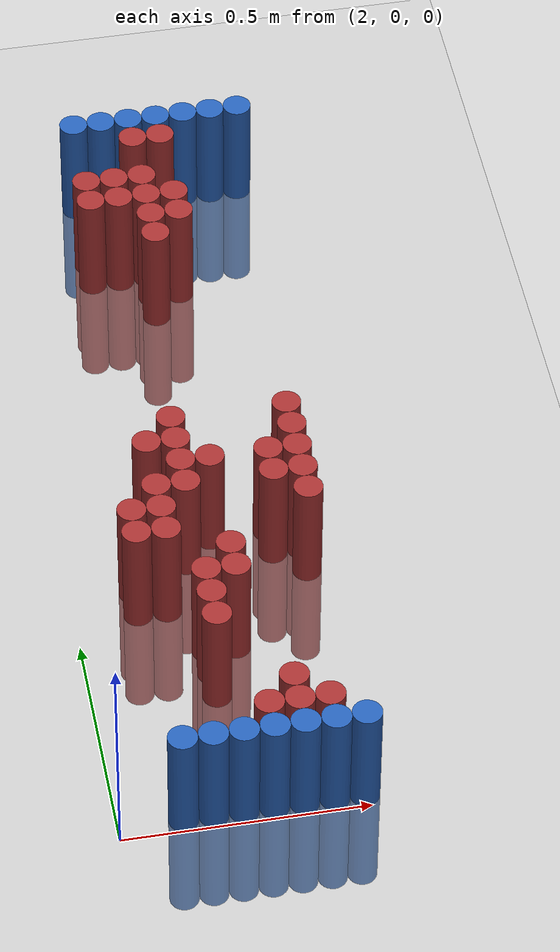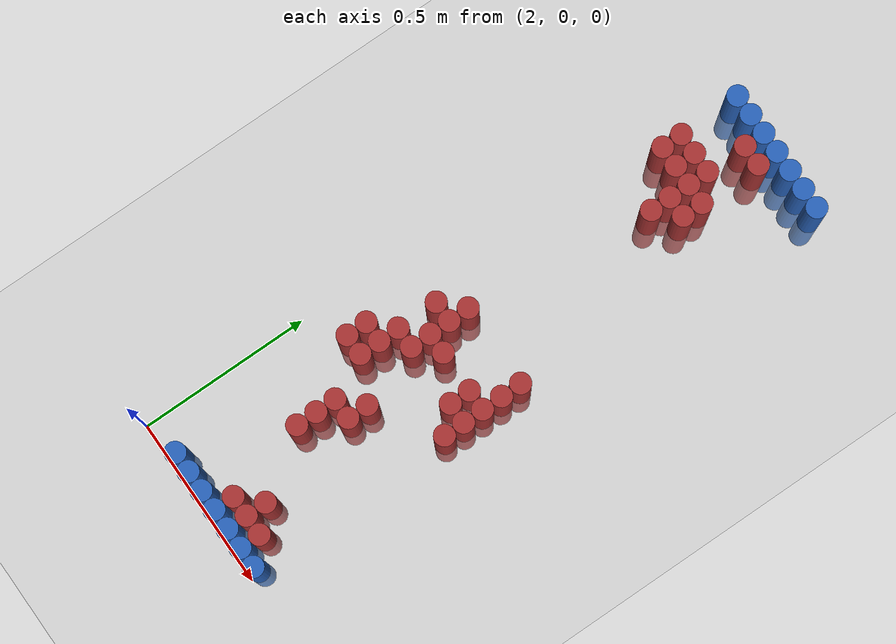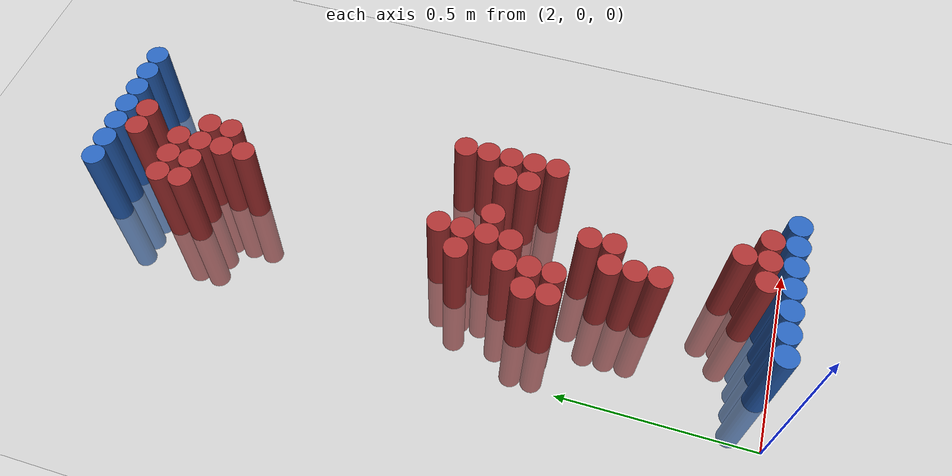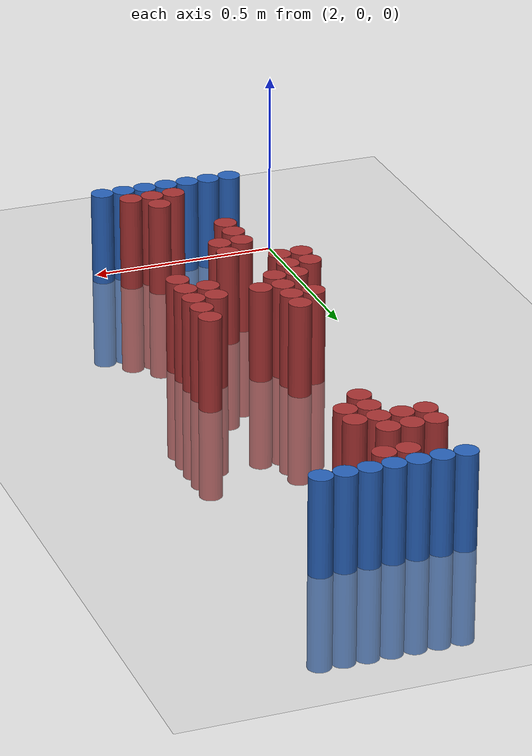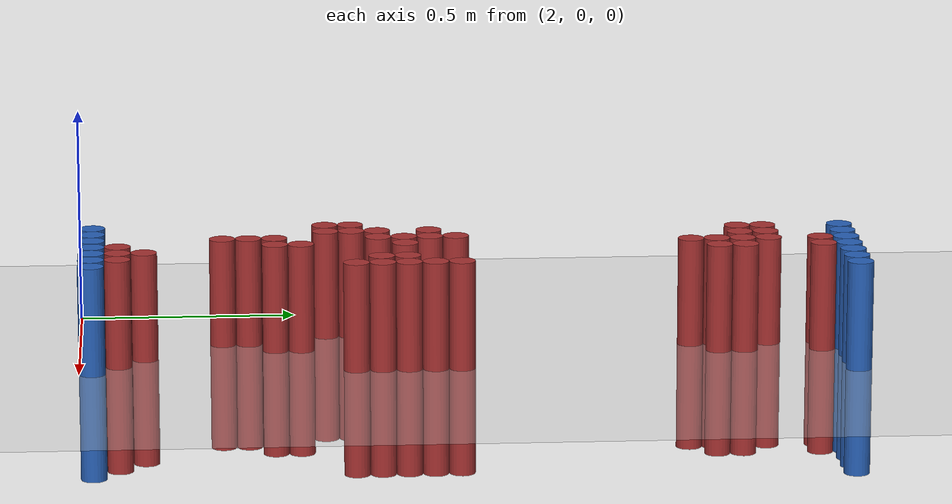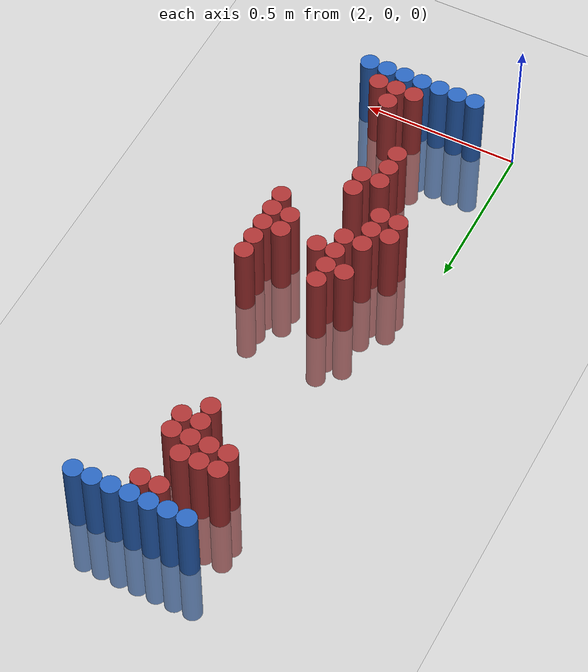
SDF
<sdf version="1.6">
 <world name="default">
  <model name="ground_plane">
   <static>1</static>
   <link name="link">
    <collision name="collision">
     <geometry><plane><normal>0 0 1</normal><size>100 100</size></plane></geometry>
     <surface><friction><ode><mu>100</mu><mu2>50</mu2></ode></friction></surface>
    </collision>
    <visual name="visual">
     <cast_shadows>0</cast_shadows>
     <geometry><plane><normal>0 0 1</normal><size>100 100</size></plane></geometry>
     <material>
      <script><uri>file://media/materials/scripts/gazebo.material</uri><name>Gazebo/Grey</name></script>
     </material>
    </visual>
   </link>
  </model>
  <model name="unit_cylinder_97">
   <static>1</static>
   <pose>2.190000 1.770000 0.000000 0.000000 0.000000 0.000000</pose>
   <link name="link">
    <inertial>
     <mass>1</mass>
     <inertia><ixx>0.145833</ixx><ixy>0</ixy><ixz>0</ixz><iyy>0.145833</iyy><iyz>0</iyz><izz>0.125</izz></inertia>
    </inertial>
    <collision name="collision">
     <geometry><cylinder><radius>0.030000</radius><length>0.5</length></cylinder></geometry>
    </collision>
    <visual name="visual">
     <geometry><cylinder><radius>0.030000</radius><length>0.5</length></cylinder></geometry>
     <material>
      <ambient>0.152000 0.379000 0.720000 1</ambient>
      <diffuse>0.152000 0.379000 0.720000 1</diffuse>
     </material>
     <material>
      <script><name>Gazebo/Grey</name><uri>file://media/materials/scripts/gazebo.material</uri></script>
     </material>
    </visual>
   </link>
  </model>
  <model name="unit_cylinder_98">
   <static>1</static>
   <pose>2.250000 1.770000 0.000000 0.000000 0.000000 0.000000</pose>
   <link name="link">
    <inertial>
     <mass>1</mass>
     <inertia><ixx>0.145833</ixx><ixy>0</ixy><ixz>0</ixz><iyy>0.145833</iyy><iyz>0</iyz><izz>0.125</izz></inertia>
    </inertial>
    <collision name="collision">
     <geometry><cylinder><radius>0.030000</radius><length>0.5</length></cylinder></geometry>
    </collision>
    <visual name="visual">
     <geometry><cylinder><radius>0.030000</radius><length>0.5</length></cylinder></geometry>
     <material>
      <ambient>0.152000 0.379000 0.720000 1</ambient>
      <diffuse>0.152000 0.379000 0.720000 1</diffuse>
     </material>
     <material>
      <script><name>Gazebo/Grey</name><uri>file://media/materials/scripts/gazebo.material</uri></script>
     </material>
    </visual>
   </link>
  </model>
  <model name="unit_cylinder_99">
   <static>1</static>
   <pose>2.310000 1.770000 0.000000 0.000000 0.000000 0.000000</pose>
   <link name="link">
    <inertial>
     <mass>1</mass>
     <inertia><ixx>0.145833</ixx><ixy>0</ixy><ixz>0</ixz><iyy>0.145833</iyy><iyz>0</iyz><izz>0.125</izz></inertia>
    </inertial>
    <collision name="collision">
     <geometry><cylinder><radius>0.030000</radius><length>0.5</length></cylinder></geometry>
    </collision>
    <visual name="visual">
     <geometry><cylinder><radius>0.030000</radius><length>0.5</length></cylinder></geometry>
     <material>
      <ambient>0.152000 0.379000 0.720000 1</ambient>
      <diffuse>0.152000 0.379000 0.720000 1</diffuse>
     </material>
     <material>
      <script><name>Gazebo/Grey</name><uri>file://media/materials/scripts/gazebo.material</uri></script>
     </material>
    </visual>
   </link>
  </model>
  <model name="unit_cylinder_100">
   <static>1</static>
   <pose>2.370000 1.770000 0.000000 0.000000 0.000000 0.000000</pose>
   <link name="link">
    <inertial>
     <mass>1</mass>
     <inertia><ixx>0.145833</ixx><ixy>0</ixy><ixz>0</ixz><iyy>0.145833</iyy><iyz>0</iyz><izz>0.125</izz></inertia>
    </inertial>
    <collision name="collision">
     <geometry><cylinder><radius>0.030000</radius><length>0.5</length></cylinder></geometry>
    </collision>
    <visual name="visual">
     <geometry><cylinder><radius>0.030000</radius><length>0.5</length></cylinder></geometry>
     <material>
      <ambient>0.152000 0.379000 0.720000 1</ambient>
      <diffuse>0.152000 0.379000 0.720000 1</diffuse>
     </material>
     <material>
      <script><name>Gazebo/Grey</name><uri>file://media/materials/scripts/gazebo.material</uri></script>
     </material>
    </visual>
   </link>
  </model>
  <model name="unit_cylinder_101">
   <static>1</static>
   <pose>2.430000 1.770000 0.000000 0.000000 0.000000 0.000000</pose>
   <link name="link">
    <inertial>
     <mass>1</mass>
     <inertia><ixx>0.145833</ixx><ixy>0</ixy><ixz>0</ixz><iyy>0.145833</iyy><iyz>0</iyz><izz>0.125</izz></inertia>
    </inertial>
    <collision name="collision">
     <geometry><cylinder><radius>0.030000</radius><length>0.5</length></cylinder></geometry>
    </collision>
    <visual name="visual">
     <geometry><cylinder><radius>0.030000</radius><length>0.5</length></cylinder></geometry>
     <material>
      <ambient>0.152000 0.379000 0.720000 1</ambient>
      <diffuse>0.152000 0.379000 0.720000 1</diffuse>
     </material>
     <material>
      <script><name>Gazebo/Grey</name><uri>file://media/materials/scripts/gazebo.material</uri></script>
     </material>
    </visual>
   </link>
  </model>
  <model name="unit_cylinder_102">
   <static>1</static>
   <pose>2.490000 1.770000 0.000000 0.000000 0.000000 0.000000</pose>
   <link name="link">
    <inertial>
     <mass>1</mass>
     <inertia><ixx>0.145833</ixx><ixy>0</ixy><ixz>0</ixz><iyy>0.145833</iyy><iyz>0</iyz><izz>0.125</izz></inertia>
    </inertial>
    <collision name="collision">
     <geometry><cylinder><radius>0.030000</radius><length>0.5</length></cylinder></geometry>
    </collision>
    <visual name="visual">
     <geometry><cylinder><radius>0.030000</radius><length>0.5</length></cylinder></geometry>
     <material>
      <ambient>0.152000 0.379000 0.720000 1</ambient>
      <diffuse>0.152000 0.379000 0.720000 1</diffuse>
     </material>
     <material>
      <script><name>Gazebo/Grey</name><uri>file://media/materials/scripts/gazebo.material</uri></script>
     </material>
    </visual>
   </link>
  </model>
  <model name="unit_cylinder_103">
   <static>1</static>
   <pose>2.550000 1.770000 0.000000 0.000000 0.000000 0.000000</pose>
   <link name="link">
    <inertial>
     <mass>1</mass>
     <inertia><ixx>0.145833</ixx><ixy>0</ixy><ixz>0</ixz><iyy>0.145833</iyy><iyz>0</iyz><izz>0.125</izz></inertia>
    </inertial>
    <collision name="collision">
     <geometry><cylinder><radius>0.030000</radius><length>0.5</length></cylinder></geometry>
    </collision>
    <visual name="visual">
     <geometry><cylinder><radius>0.030000</radius><length>0.5</length></cylinder></geometry>
     <material>
      <ambient>0.152000 0.379000 0.720000 1</ambient>
      <diffuse>0.152000 0.379000 0.720000 1</diffuse>
     </material>
     <material>
      <script><name>Gazebo/Grey</name><uri>file://media/materials/scripts/gazebo.material</uri></script>
     </material>
    </visual>
   </link>
  </model>
  <model name="unit_cylinder_125">
   <static>1</static>
   <pose>2.310000 1.710000 0.000000 0.000000 0.000000 0.000000</pose>
   <link name="link">
    <inertial>
     <mass>1</mass>
     <inertia><ixx>0.145833</ixx><ixy>0</ixy><ixz>0</ixz><iyy>0.145833</iyy><iyz>0</iyz><izz>0.125</izz></inertia>
    </inertial>
    <collision name="collision">
     <geometry><cylinder><radius>0.030000</radius><length>0.5</length></cylinder></geometry>
    </collision>
    <visual name="visual">
     <geometry><cylinder><radius>0.030000</radius><length>0.5</length></cylinder></geometry>
     <material>
      <ambient>0.648000 0.192000 0.192000 1</ambient>
      <diffuse>0.648000 0.192000 0.192000 1</diffuse>
     </material>
     <material>
      <script><name>Gazebo/Grey</name><uri>file://media/materials/scripts/gazebo.material</uri></script>
     </material>
    </visual>
   </link>
  </model>
  <model name="unit_cylinder_126">
   <static>1</static>
   <pose>2.370000 1.710000 0.000000 0.000000 0.000000 0.000000</pose>
   <link name="link">
    <inertial>
     <mass>1</mass>
     <inertia><ixx>0.145833</ixx><ixy>0</ixy><ixz>0</ixz><iyy>0.145833</iyy><iyz>0</iyz><izz>0.125</izz></inertia>
    </inertial>
    <collision name="collision">
     <geometry><cylinder><radius>0.030000</radius><length>0.5</length></cylinder></geometry>
    </collision>
    <visual name="visual">
     <geometry><cylinder><radius>0.030000</radius><length>0.5</length></cylinder></geometry>
     <material>
      <ambient>0.648000 0.192000 0.192000 1</ambient>
      <diffuse>0.648000 0.192000 0.192000 1</diffuse>
     </material>
     <material>
      <script><name>Gazebo/Grey</name><uri>file://media/materials/scripts/gazebo.material</uri></script>
     </material>
    </visual>
   </link>
  </model>
  <model name="unit_cylinder_146">
   <static>1</static>
   <pose>2.190000 1.590000 0.000000 0.000000 0.000000 0.000000</pose>
   <link name="link">
    <inertial>
     <mass>1</mass>
     <inertia><ixx>0.145833</ixx><ixy>0</ixy><ixz>0</ixz><iyy>0.145833</iyy><iyz>0</iyz><izz>0.125</izz></inertia>
    </inertial>
    <collision name="collision">
     <geometry><cylinder><radius>0.030000</radius><length>0.5</length></cylinder></geometry>
    </collision>
    <visual name="visual">
     <geometry><cylinder><radius>0.030000</radius><length>0.5</length></cylinder></geometry>
     <material>
      <ambient>0.648000 0.192000 0.192000 1</ambient>
      <diffuse>0.648000 0.192000 0.192000 1</diffuse>
     </material>
     <material>
      <script><name>Gazebo/Grey</name><uri>file://media/materials/scripts/gazebo.material</uri></script>
     </material>
    </visual>
   </link>
  </model>
  <model name="unit_cylinder_147">
   <static>1</static>
   <pose>2.250000 1.590000 0.000000 0.000000 0.000000 0.000000</pose>
   <link name="link">
    <inertial>
     <mass>1</mass>
     <inertia><ixx>0.145833</ixx><ixy>0</ixy><ixz>0</ixz><iyy>0.145833</iyy><iyz>0</iyz><izz>0.125</izz></inertia>
    </inertial>
    <collision name="collision">
     <geometry><cylinder><radius>0.030000</radius><length>0.5</length></cylinder></geometry>
    </collision>
    <visual name="visual">
     <geometry><cylinder><radius>0.030000</radius><length>0.5</length></cylinder></geometry>
     <material>
      <ambient>0.648000 0.192000 0.192000 1</ambient>
      <diffuse>0.648000 0.192000 0.192000 1</diffuse>
     </material>
     <material>
      <script><name>Gazebo/Grey</name><uri>file://media/materials/scripts/gazebo.material</uri></script>
     </material>
    </visual>
   </link>
  </model>
  <model name="unit_cylinder_148">
   <static>1</static>
   <pose>2.310000 1.590000 0.000000 0.000000 0.000000 0.000000</pose>
   <link name="link">
    <inertial>
     <mass>1</mass>
     <inertia><ixx>0.145833</ixx><ixy>0</ixy><ixz>0</ixz><iyy>0.145833</iyy><iyz>0</iyz><izz>0.125</izz></inertia>
    </inertial>
    <collision name="collision">
     <geometry><cylinder><radius>0.030000</radius><length>0.5</length></cylinder></geometry>
    </collision>
    <visual name="visual">
     <geometry><cylinder><radius>0.030000</radius><length>0.5</length></cylinder></geometry>
     <material>
      <ambient>0.648000 0.192000 0.192000 1</ambient>
      <diffuse>0.648000 0.192000 0.192000 1</diffuse>
     </material>
     <material>
      <script><name>Gazebo/Grey</name><uri>file://media/materials/scripts/gazebo.material</uri></script>
     </material>
    </visual>
   </link>
  </model>
  <model name="unit_cylinder_155">
   <static>1</static>
   <pose>2.190000 1.530000 0.000000 0.000000 0.000000 0.000000</pose>
   <link name="link">
    <inertial>
     <mass>1</mass>
     <inertia><ixx>0.145833</ixx><ixy>0</ixy><ixz>0</ixz><iyy>0.145833</iyy><iyz>0</iyz><izz>0.125</izz></inertia>
    </inertial>
    <collision name="collision">
     <geometry><cylinder><radius>0.030000</radius><length>0.5</length></cylinder></geometry>
    </collision>
    <visual name="visual">
     <geometry><cylinder><radius>0.030000</radius><length>0.5</length></cylinder></geometry>
     <material>
      <ambient>0.648000 0.192000 0.192000 1</ambient>
      <diffuse>0.648000 0.192000 0.192000 1</diffuse>
     </material>
     <material>
      <script><name>Gazebo/Grey</name><uri>file://media/materials/scripts/gazebo.material</uri></script>
     </material>
    </visual>
   </link>
  </model>
  <model name="unit_cylinder_156">
   <static>1</static>
   <pose>2.250000 1.530000 0.000000 0.000000 0.000000 0.000000</pose>
   <link name="link">
    <inertial>
     <mass>1</mass>
     <inertia><ixx>0.145833</ixx><ixy>0</ixy><ixz>0</ixz><iyy>0.145833</iyy><iyz>0</iyz><izz>0.125</izz></inertia>
    </inertial>
    <collision name="collision">
     <geometry><cylinder><radius>0.030000</radius><length>0.5</length></cylinder></geometry>
    </collision>
    <visual name="visual">
     <geometry><cylinder><radius>0.030000</radius><length>0.5</length></cylinder></geometry>
     <material>
      <ambient>0.648000 0.192000 0.192000 1</ambient>
      <diffuse>0.648000 0.192000 0.192000 1</diffuse>
     </material>
     <material>
      <script><name>Gazebo/Grey</name><uri>file://media/materials/scripts/gazebo.material</uri></script>
     </material>
    </visual>
   </link>
  </model>
  <model name="unit_cylinder_157">
   <static>1</static>
   <pose>2.310000 1.530000 0.000000 0.000000 0.000000 0.000000</pose>
   <link name="link">
    <inertial>
     <mass>1</mass>
     <inertia><ixx>0.145833</ixx><ixy>0</ixy><ixz>0</ixz><iyy>0.145833</iyy><iyz>0</iyz><izz>0.125</izz></inertia>
    </inertial>
    <collision name="collision">
     <geometry><cylinder><radius>0.030000</radius><length>0.5</length></cylinder></geometry>
    </collision>
    <visual name="visual">
     <geometry><cylinder><radius>0.030000</radius><length>0.5</length></cylinder></geometry>
     <material>
      <ambient>0.648000 0.192000 0.192000 1</ambient>
      <diffuse>0.648000 0.192000 0.192000 1</diffuse>
     </material>
     <material>
      <script><name>Gazebo/Grey</name><uri>file://media/materials/scripts/gazebo.material</uri></script>
     </material>
    </visual>
   </link>
  </model>
  <model name="unit_cylinder_158">
   <static>1</static>
   <pose>2.370000 1.530000 0.000000 0.000000 0.000000 0.000000</pose>
   <link name="link">
    <inertial>
     <mass>1</mass>
     <inertia><ixx>0.145833</ixx><ixy>0</ixy><ixz>0</ixz><iyy>0.145833</iyy><iyz>0</iyz><izz>0.125</izz></inertia>
    </inertial>
    <collision name="collision">
     <geometry><cylinder><radius>0.030000</radius><length>0.5</length></cylinder></geometry>
    </collision>
    <visual name="visual">
     <geometry><cylinder><radius>0.030000</radius><length>0.5</length></cylinder></geometry>
     <material>
      <ambient>0.648000 0.192000 0.192000 1</ambient>
      <diffuse>0.648000 0.192000 0.192000 1</diffuse>
     </material>
     <material>
      <script><name>Gazebo/Grey</name><uri>file://media/materials/scripts/gazebo.material</uri></script>
     </material>
    </visual>
   </link>
  </model>
  <model name="unit_cylinder_163">
   <static>1</static>
   <pose>2.310000 1.470000 0.000000 0.000000 0.000000 0.000000</pose>
   <link name="link">
    <inertial>
     <mass>1</mass>
     <inertia><ixx>0.145833</ixx><ixy>0</ixy><ixz>0</ixz><iyy>0.145833</iyy><iyz>0</iyz><izz>0.125</izz></inertia>
    </inertial>
    <collision name="collision">
     <geometry><cylinder><radius>0.030000</radius><length>0.5</length></cylinder></geometry>
    </collision>
    <visual name="visual">
     <geometry><cylinder><radius>0.030000</radius><length>0.5</length></cylinder></geometry>
     <material>
      <ambient>0.648000 0.192000 0.192000 1</ambient>
      <diffuse>0.648000 0.192000 0.192000 1</diffuse>
     </material>
     <material>
      <script><name>Gazebo/Grey</name><uri>file://media/materials/scripts/gazebo.material</uri></script>
     </material>
    </visual>
   </link>
  </model>
  <model name="unit_cylinder_164">
   <static>1</static>
   <pose>2.370000 1.470000 0.000000 0.000000 0.000000 0.000000</pose>
   <link name="link">
    <inertial>
     <mass>1</mass>
     <inertia><ixx>0.145833</ixx><ixy>0</ixy><ixz>0</ixz><iyy>0.145833</iyy><iyz>0</iyz><izz>0.125</izz></inertia>
    </inertial>
    <collision name="collision">
     <geometry><cylinder><radius>0.030000</radius><length>0.5</length></cylinder></geometry>
    </collision>
    <visual name="visual">
     <geometry><cylinder><radius>0.030000</radius><length>0.5</length></cylinder></geometry>
     <material>
      <ambient>0.648000 0.192000 0.192000 1</ambient>
      <diffuse>0.648000 0.192000 0.192000 1</diffuse>
     </material>
     <material>
      <script><name>Gazebo/Grey</name><uri>file://media/materials/scripts/gazebo.material</uri></script>
     </material>
    </visual>
   </link>
  </model>
  <model name="unit_cylinder_168">
   <static>1</static>
   <pose>2.310000 1.410000 0.000000 0.000000 0.000000 0.000000</pose>
   <link name="link">
    <inertial>
     <mass>1</mass>
     <inertia><ixx>0.145833</ixx><ixy>0</ixy><ixz>0</ixz><iyy>0.145833</iyy><iyz>0</iyz><izz>0.125</izz></inertia>
    </inertial>
    <collision name="collision">
     <geometry><cylinder><radius>0.030000</radius><length>0.5</length></cylinder></geometry>
    </collision>
    <visual name="visual">
     <geometry><cylinder><radius>0.030000</radius><length>0.5</length></cylinder></geometry>
     <material>
      <ambient>0.648000 0.192000 0.192000 1</ambient>
      <diffuse>0.648000 0.192000 0.192000 1</diffuse>
     </material>
     <material>
      <script><name>Gazebo/Grey</name><uri>file://media/materials/scripts/gazebo.material</uri></script>
     </material>
    </visual>
   </link>
  </model>
  <model name="unit_cylinder_185">
   <static>1</static>
   <pose>2.250000 0.870000 0.000000 0.000000 0.000000 0.000000</pose>
   <link name="link">
    <inertial>
     <mass>1</mass>
     <inertia><ixx>0.145833</ixx><ixy>0</ixy><ixz>0</ixz><iyy>0.145833</iyy><iyz>0</iyz><izz>0.125</izz></inertia>
    </inertial>
    <collision name="collision">
     <geometry><cylinder><radius>0.030000</radius><length>0.5</length></cylinder></geometry>
    </collision>
    <visual name="visual">
     <geometry><cylinder><radius>0.030000</radius><length>0.5</length></cylinder></geometry>
     <material>
      <ambient>0.648000 0.192000 0.192000 1</ambient>
      <diffuse>0.648000 0.192000 0.192000 1</diffuse>
     </material>
     <material>
      <script><name>Gazebo/Grey</name><uri>file://media/materials/scripts/gazebo.material</uri></script>
     </material>
    </visual>
   </link>
  </model>
  <model name="unit_cylinder_186">
   <static>1</static>
   <pose>2.490000 0.870000 0.000000 0.000000 0.000000 0.000000</pose>
   <link name="link">
    <inertial>
     <mass>1</mass>
     <inertia><ixx>0.145833</ixx><ixy>0</ixy><ixz>0</ixz><iyy>0.145833</iyy><iyz>0</iyz><izz>0.125</izz></inertia>
    </inertial>
    <collision name="collision">
     <geometry><cylinder><radius>0.030000</radius><length>0.5</length></cylinder></geometry>
    </collision>
    <visual name="visual">
     <geometry><cylinder><radius>0.030000</radius><length>0.5</length></cylinder></geometry>
     <material>
      <ambient>0.648000 0.192000 0.192000 1</ambient>
      <diffuse>0.648000 0.192000 0.192000 1</diffuse>
     </material>
     <material>
      <script><name>Gazebo/Grey</name><uri>file://media/materials/scripts/gazebo.material</uri></script>
     </material>
    </visual>
   </link>
  </model>
  <model name="unit_cylinder_190">
   <static>1</static>
   <pose>2.190000 0.810000 0.000000 0.000000 0.000000 0.000000</pose>
   <link name="link">
    <inertial>
     <mass>1</mass>
     <inertia><ixx>0.145833</ixx><ixy>0</ixy><ixz>0</ixz><iyy>0.145833</iyy><iyz>0</iyz><izz>0.125</izz></inertia>
    </inertial>
    <collision name="collision">
     <geometry><cylinder><radius>0.030000</radius><length>0.5</length></cylinder></geometry>
    </collision>
    <visual name="visual">
     <geometry><cylinder><radius>0.030000</radius><length>0.5</length></cylinder></geometry>
     <material>
      <ambient>0.648000 0.192000 0.192000 1</ambient>
      <diffuse>0.648000 0.192000 0.192000 1</diffuse>
     </material>
     <material>
      <script><name>Gazebo/Grey</name><uri>file://media/materials/scripts/gazebo.material</uri></script>
     </material>
    </visual>
   </link>
  </model>
  <model name="unit_cylinder_191">
   <static>1</static>
   <pose>2.250000 0.810000 0.000000 0.000000 0.000000 0.000000</pose>
   <link name="link">
    <inertial>
     <mass>1</mass>
     <inertia><ixx>0.145833</ixx><ixy>0</ixy><ixz>0</ixz><iyy>0.145833</iyy><iyz>0</iyz><izz>0.125</izz></inertia>
    </inertial>
    <collision name="collision">
     <geometry><cylinder><radius>0.030000</radius><length>0.5</length></cylinder></geometry>
    </collision>
    <visual name="visual">
     <geometry><cylinder><radius>0.030000</radius><length>0.5</length></cylinder></geometry>
     <material>
      <ambient>0.648000 0.192000 0.192000 1</ambient>
      <diffuse>0.648000 0.192000 0.192000 1</diffuse>
     </material>
     <material>
      <script><name>Gazebo/Grey</name><uri>file://media/materials/scripts/gazebo.material</uri></script>
     </material>
    </visual>
   </link>
  </model>
  <model name="unit_cylinder_192">
   <static>1</static>
   <pose>2.490000 0.810000 0.000000 0.000000 0.000000 0.000000</pose>
   <link name="link">
    <inertial>
     <mass>1</mass>
     <inertia><ixx>0.145833</ixx><ixy>0</ixy><ixz>0</ixz><iyy>0.145833</iyy><iyz>0</iyz><izz>0.125</izz></inertia>
    </inertial>
    <collision name="collision">
     <geometry><cylinder><radius>0.030000</radius><length>0.5</length></cylinder></geometry>
    </collision>
    <visual name="visual">
     <geometry><cylinder><radius>0.030000</radius><length>0.5</length></cylinder></geometry>
     <material>
      <ambient>0.648000 0.192000 0.192000 1</ambient>
      <diffuse>0.648000 0.192000 0.192000 1</diffuse>
     </material>
     <material>
      <script><name>Gazebo/Grey</name><uri>file://media/materials/scripts/gazebo.material</uri></script>
     </material>
    </visual>
   </link>
  </model>
  <model name="unit_cylinder_198">
   <static>1</static>
   <pose>2.250000 0.750000 0.000000 0.000000 0.000000 0.000000</pose>
   <link name="link">
    <inertial>
     <mass>1</mass>
     <inertia><ixx>0.145833</ixx><ixy>0</ixy><ixz>0</ixz><iyy>0.145833</iyy><iyz>0</iyz><izz>0.125</izz></inertia>
    </inertial>
    <collision name="collision">
     <geometry><cylinder><radius>0.030000</radius><length>0.5</length></cylinder></geometry>
    </collision>
    <visual name="visual">
     <geometry><cylinder><radius>0.030000</radius><length>0.5</length></cylinder></geometry>
     <material>
      <ambient>0.648000 0.192000 0.192000 1</ambient>
      <diffuse>0.648000 0.192000 0.192000 1</diffuse>
     </material>
     <material>
      <script><name>Gazebo/Grey</name><uri>file://media/materials/scripts/gazebo.material</uri></script>
     </material>
    </visual>
   </link>
  </model>
  <model name="unit_cylinder_199">
   <static>1</static>
   <pose>2.310000 0.750000 0.000000 0.000000 0.000000 0.000000</pose>
   <link name="link">
    <inertial>
     <mass>1</mass>
     <inertia><ixx>0.145833</ixx><ixy>0</ixy><ixz>0</ixz><iyy>0.145833</iyy><iyz>0</iyz><izz>0.125</izz></inertia>
    </inertial>
    <collision name="collision">
     <geometry><cylinder><radius>0.030000</radius><length>0.5</length></cylinder></geometry>
    </collision>
    <visual name="visual">
     <geometry><cylinder><radius>0.030000</radius><length>0.5</length></cylinder></geometry>
     <material>
      <ambient>0.648000 0.192000 0.192000 1</ambient>
      <diffuse>0.648000 0.192000 0.192000 1</diffuse>
     </material>
     <material>
      <script><name>Gazebo/Grey</name><uri>file://media/materials/scripts/gazebo.material</uri></script>
     </material>
    </visual>
   </link>
  </model>
  <model name="unit_cylinder_200">
   <static>1</static>
   <pose>2.430000 0.750000 0.000000 0.000000 0.000000 0.000000</pose>
   <link name="link">
    <inertial>
     <mass>1</mass>
     <inertia><ixx>0.145833</ixx><ixy>0</ixy><ixz>0</ixz><iyy>0.145833</iyy><iyz>0</iyz><izz>0.125</izz></inertia>
    </inertial>
    <collision name="collision">
     <geometry><cylinder><radius>0.030000</radius><length>0.5</length></cylinder></geometry>
    </collision>
    <visual name="visual">
     <geometry><cylinder><radius>0.030000</radius><length>0.5</length></cylinder></geometry>
     <material>
      <ambient>0.648000 0.192000 0.192000 1</ambient>
      <diffuse>0.648000 0.192000 0.192000 1</diffuse>
     </material>
     <material>
      <script><name>Gazebo/Grey</name><uri>file://media/materials/scripts/gazebo.material</uri></script>
     </material>
    </visual>
   </link>
  </model>
  <model name="unit_cylinder_201">
   <static>1</static>
   <pose>2.490000 0.750000 0.000000 0.000000 0.000000 0.000000</pose>
   <link name="link">
    <inertial>
     <mass>1</mass>
     <inertia><ixx>0.145833</ixx><ixy>0</ixy><ixz>0</ixz><iyy>0.145833</iyy><iyz>0</iyz><izz>0.125</izz></inertia>
    </inertial>
    <collision name="collision">
     <geometry><cylinder><radius>0.030000</radius><length>0.5</length></cylinder></geometry>
    </collision>
    <visual name="visual">
     <geometry><cylinder><radius>0.030000</radius><length>0.5</length></cylinder></geometry>
     <material>
      <ambient>0.648000 0.192000 0.192000 1</ambient>
      <diffuse>0.648000 0.192000 0.192000 1</diffuse>
     </material>
     <material>
      <script><name>Gazebo/Grey</name><uri>file://media/materials/scripts/gazebo.material</uri></script>
     </material>
    </visual>
   </link>
  </model>
  <model name="unit_cylinder_209">
   <static>1</static>
   <pose>2.190000 0.690000 0.000000 0.000000 0.000000 0.000000</pose>
   <link name="link">
    <inertial>
     <mass>1</mass>
     <inertia><ixx>0.145833</ixx><ixy>0</ixy><ixz>0</ixz><iyy>0.145833</iyy><iyz>0</iyz><izz>0.125</izz></inertia>
    </inertial>
    <collision name="collision">
     <geometry><cylinder><radius>0.030000</radius><length>0.5</length></cylinder></geometry>
    </collision>
    <visual name="visual">
     <geometry><cylinder><radius>0.030000</radius><length>0.5</length></cylinder></geometry>
     <material>
      <ambient>0.648000 0.192000 0.192000 1</ambient>
      <diffuse>0.648000 0.192000 0.192000 1</diffuse>
     </material>
     <material>
      <script><name>Gazebo/Grey</name><uri>file://media/materials/scripts/gazebo.material</uri></script>
     </material>
    </visual>
   </link>
  </model>
  <model name="unit_cylinder_210">
   <static>1</static>
   <pose>2.250000 0.690000 0.000000 0.000000 0.000000 0.000000</pose>
   <link name="link">
    <inertial>
     <mass>1</mass>
     <inertia><ixx>0.145833</ixx><ixy>0</ixy><ixz>0</ixz><iyy>0.145833</iyy><iyz>0</iyz><izz>0.125</izz></inertia>
    </inertial>
    <collision name="collision">
     <geometry><cylinder><radius>0.030000</radius><length>0.5</length></cylinder></geometry>
    </collision>
    <visual name="visual">
     <geometry><cylinder><radius>0.030000</radius><length>0.5</length></cylinder></geometry>
     <material>
      <ambient>0.648000 0.192000 0.192000 1</ambient>
      <diffuse>0.648000 0.192000 0.192000 1</diffuse>
     </material>
     <material>
      <script><name>Gazebo/Grey</name><uri>file://media/materials/scripts/gazebo.material</uri></script>
     </material>
    </visual>
   </link>
  </model>
  <model name="unit_cylinder_211">
   <static>1</static>
   <pose>2.430000 0.690000 0.000000 0.000000 0.000000 0.000000</pose>
   <link name="link">
    <inertial>
     <mass>1</mass>
     <inertia><ixx>0.145833</ixx><ixy>0</ixy><ixz>0</ixz><iyy>0.145833</iyy><iyz>0</iyz><izz>0.125</izz></inertia>
    </inertial>
    <collision name="collision">
     <geometry><cylinder><radius>0.030000</radius><length>0.5</length></cylinder></geometry>
    </collision>
    <visual name="visual">
     <geometry><cylinder><radius>0.030000</radius><length>0.5</length></cylinder></geometry>
     <material>
      <ambient>0.648000 0.192000 0.192000 1</ambient>
      <diffuse>0.648000 0.192000 0.192000 1</diffuse>
     </material>
     <material>
      <script><name>Gazebo/Grey</name><uri>file://media/materials/scripts/gazebo.material</uri></script>
     </material>
    </visual>
   </link>
  </model>
  <model name="unit_cylinder_212">
   <static>1</static>
   <pose>2.490000 0.690000 0.000000 0.000000 0.000000 0.000000</pose>
   <link name="link">
    <inertial>
     <mass>1</mass>
     <inertia><ixx>0.145833</ixx><ixy>0</ixy><ixz>0</ixz><iyy>0.145833</iyy><iyz>0</iyz><izz>0.125</izz></inertia>
    </inertial>
    <collision name="collision">
     <geometry><cylinder><radius>0.030000</radius><length>0.5</length></cylinder></geometry>
    </collision>
    <visual name="visual">
     <geometry><cylinder><radius>0.030000</radius><length>0.5</length></cylinder></geometry>
     <material>
      <ambient>0.648000 0.192000 0.192000 1</ambient>
      <diffuse>0.648000 0.192000 0.192000 1</diffuse>
     </material>
     <material>
      <script><name>Gazebo/Grey</name><uri>file://media/materials/scripts/gazebo.material</uri></script>
     </material>
    </visual>
   </link>
  </model>
  <model name="unit_cylinder_218">
   <static>1</static>
   <pose>2.130000 0.630000 0.000000 0.000000 0.000000 0.000000</pose>
   <link name="link">
    <inertial>
     <mass>1</mass>
     <inertia><ixx>0.145833</ixx><ixy>0</ixy><ixz>0</ixz><iyy>0.145833</iyy><iyz>0</iyz><izz>0.125</izz></inertia>
    </inertial>
    <collision name="collision">
     <geometry><cylinder><radius>0.030000</radius><length>0.5</length></cylinder></geometry>
    </collision>
    <visual name="visual">
     <geometry><cylinder><radius>0.030000</radius><length>0.5</length></cylinder></geometry>
     <material>
      <ambient>0.648000 0.192000 0.192000 1</ambient>
      <diffuse>0.648000 0.192000 0.192000 1</diffuse>
     </material>
     <material>
      <script><name>Gazebo/Grey</name><uri>file://media/materials/scripts/gazebo.material</uri></script>
     </material>
    </visual>
   </link>
  </model>
  <model name="unit_cylinder_219">
   <static>1</static>
   <pose>2.190000 0.630000 0.000000 0.000000 0.000000 0.000000</pose>
   <link name="link">
    <inertial>
     <mass>1</mass>
     <inertia><ixx>0.145833</ixx><ixy>0</ixy><ixz>0</ixz><iyy>0.145833</iyy><iyz>0</iyz><izz>0.125</izz></inertia>
    </inertial>
    <collision name="collision">
     <geometry><cylinder><radius>0.030000</radius><length>0.5</length></cylinder></geometry>
    </collision>
    <visual name="visual">
     <geometry><cylinder><radius>0.030000</radius><length>0.5</length></cylinder></geometry>
     <material>
      <ambient>0.648000 0.192000 0.192000 1</ambient>
      <diffuse>0.648000 0.192000 0.192000 1</diffuse>
     </material>
     <material>
      <script><name>Gazebo/Grey</name><uri>file://media/materials/scripts/gazebo.material</uri></script>
     </material>
    </visual>
   </link>
  </model>
  <model name="unit_cylinder_220">
   <static>1</static>
   <pose>2.490000 0.630000 0.000000 0.000000 0.000000 0.000000</pose>
   <link name="link">
    <inertial>
     <mass>1</mass>
     <inertia><ixx>0.145833</ixx><ixy>0</ixy><ixz>0</ixz><iyy>0.145833</iyy><iyz>0</iyz><izz>0.125</izz></inertia>
    </inertial>
    <collision name="collision">
     <geometry><cylinder><radius>0.030000</radius><length>0.5</length></cylinder></geometry>
    </collision>
    <visual name="visual">
     <geometry><cylinder><radius>0.030000</radius><length>0.5</length></cylinder></geometry>
     <material>
      <ambient>0.648000 0.192000 0.192000 1</ambient>
      <diffuse>0.648000 0.192000 0.192000 1</diffuse>
     </material>
     <material>
      <script><name>Gazebo/Grey</name><uri>file://media/materials/scripts/gazebo.material</uri></script>
     </material>
    </visual>
   </link>
  </model>
  <model name="unit_cylinder_227">
   <static>1</static>
   <pose>2.130000 0.570000 0.000000 0.000000 0.000000 0.000000</pose>
   <link name="link">
    <inertial>
     <mass>1</mass>
     <inertia><ixx>0.145833</ixx><ixy>0</ixy><ixz>0</ixz><iyy>0.145833</iyy><iyz>0</iyz><izz>0.125</izz></inertia>
    </inertial>
    <collision name="collision">
     <geometry><cylinder><radius>0.030000</radius><length>0.5</length></cylinder></geometry>
    </collision>
    <visual name="visual">
     <geometry><cylinder><radius>0.030000</radius><length>0.5</length></cylinder></geometry>
     <material>
      <ambient>0.648000 0.192000 0.192000 1</ambient>
      <diffuse>0.648000 0.192000 0.192000 1</diffuse>
     </material>
     <material>
      <script><name>Gazebo/Grey</name><uri>file://media/materials/scripts/gazebo.material</uri></script>
     </material>
    </visual>
   </link>
  </model>
  <model name="unit_cylinder_228">
   <static>1</static>
   <pose>2.190000 0.570000 0.000000 0.000000 0.000000 0.000000</pose>
   <link name="link">
    <inertial>
     <mass>1</mass>
     <inertia><ixx>0.145833</ixx><ixy>0</ixy><ixz>0</ixz><iyy>0.145833</iyy><iyz>0</iyz><izz>0.125</izz></inertia>
    </inertial>
    <collision name="collision">
     <geometry><cylinder><radius>0.030000</radius><length>0.5</length></cylinder></geometry>
    </collision>
    <visual name="visual">
     <geometry><cylinder><radius>0.030000</radius><length>0.5</length></cylinder></geometry>
     <material>
      <ambient>0.648000 0.192000 0.192000 1</ambient>
      <diffuse>0.648000 0.192000 0.192000 1</diffuse>
     </material>
     <material>
      <script><name>Gazebo/Grey</name><uri>file://media/materials/scripts/gazebo.material</uri></script>
     </material>
    </visual>
   </link>
  </model>
  <model name="unit_cylinder_234">
   <static>1</static>
   <pose>2.310000 0.510000 0.000000 0.000000 0.000000 0.000000</pose>
   <link name="link">
    <inertial>
     <mass>1</mass>
     <inertia><ixx>0.145833</ixx><ixy>0</ixy><ixz>0</ixz><iyy>0.145833</iyy><iyz>0</iyz><izz>0.125</izz></inertia>
    </inertial>
    <collision name="collision">
     <geometry><cylinder><radius>0.030000</radius><length>0.5</length></cylinder></geometry>
    </collision>
    <visual name="visual">
     <geometry><cylinder><radius>0.030000</radius><length>0.5</length></cylinder></geometry>
     <material>
      <ambient>0.648000 0.192000 0.192000 1</ambient>
      <diffuse>0.648000 0.192000 0.192000 1</diffuse>
     </material>
     <material>
      <script><name>Gazebo/Grey</name><uri>file://media/materials/scripts/gazebo.material</uri></script>
     </material>
    </visual>
   </link>
  </model>
  <model name="unit_cylinder_239">
   <static>1</static>
   <pose>2.250000 0.450000 0.000000 0.000000 0.000000 0.000000</pose>
   <link name="link">
    <inertial>
     <mass>1</mass>
     <inertia><ixx>0.145833</ixx><ixy>0</ixy><ixz>0</ixz><iyy>0.145833</iyy><iyz>0</iyz><izz>0.125</izz></inertia>
    </inertial>
    <collision name="collision">
     <geometry><cylinder><radius>0.030000</radius><length>0.5</length></cylinder></geometry>
    </collision>
    <visual name="visual">
     <geometry><cylinder><radius>0.030000</radius><length>0.5</length></cylinder></geometry>
     <material>
      <ambient>0.648000 0.192000 0.192000 1</ambient>
      <diffuse>0.648000 0.192000 0.192000 1</diffuse>
     </material>
     <material>
      <script><name>Gazebo/Grey</name><uri>file://media/materials/scripts/gazebo.material</uri></script>
     </material>
    </visual>
   </link>
  </model>
  <model name="unit_cylinder_240">
   <static>1</static>
   <pose>2.310000 0.450000 0.000000 0.000000 0.000000 0.000000</pose>
   <link name="link">
    <inertial>
     <mass>1</mass>
     <inertia><ixx>0.145833</ixx><ixy>0</ixy><ixz>0</ixz><iyy>0.145833</iyy><iyz>0</iyz><izz>0.125</izz></inertia>
    </inertial>
    <collision name="collision">
     <geometry><cylinder><radius>0.030000</radius><length>0.5</length></cylinder></geometry>
    </collision>
    <visual name="visual">
     <geometry><cylinder><radius>0.030000</radius><length>0.5</length></cylinder></geometry>
     <material>
      <ambient>0.648000 0.192000 0.192000 1</ambient>
      <diffuse>0.648000 0.192000 0.192000 1</diffuse>
     </material>
     <material>
      <script><name>Gazebo/Grey</name><uri>file://media/materials/scripts/gazebo.material</uri></script>
     </material>
    </visual>
   </link>
  </model>
  <model name="unit_cylinder_243">
   <static>1</static>
   <pose>2.250000 0.390000 0.000000 0.000000 0.000000 0.000000</pose>
   <link name="link">
    <inertial>
     <mass>1</mass>
     <inertia><ixx>0.145833</ixx><ixy>0</ixy><ixz>0</ixz><iyy>0.145833</iyy><iyz>0</iyz><izz>0.125</izz></inertia>
    </inertial>
    <collision name="collision">
     <geometry><cylinder><radius>0.030000</radius><length>0.5</length></cylinder></geometry>
    </collision>
    <visual name="visual">
     <geometry><cylinder><radius>0.030000</radius><length>0.5</length></cylinder></geometry>
     <material>
      <ambient>0.648000 0.192000 0.192000 1</ambient>
      <diffuse>0.648000 0.192000 0.192000 1</diffuse>
     </material>
     <material>
      <script><name>Gazebo/Grey</name><uri>file://media/materials/scripts/gazebo.material</uri></script>
     </material>
    </visual>
   </link>
  </model>
  <model name="unit_cylinder_247">
   <static>1</static>
   <pose>2.250000 0.330000 0.000000 0.000000 0.000000 0.000000</pose>
   <link name="link">
    <inertial>
     <mass>1</mass>
     <inertia><ixx>0.145833</ixx><ixy>0</ixy><ixz>0</ixz><iyy>0.145833</iyy><iyz>0</iyz><izz>0.125</izz></inertia>
    </inertial>
    <collision name="collision">
     <geometry><cylinder><radius>0.030000</radius><length>0.5</length></cylinder></geometry>
    </collision>
    <visual name="visual">
     <geometry><cylinder><radius>0.030000</radius><length>0.5</length></cylinder></geometry>
     <material>
      <ambient>0.648000 0.192000 0.192000 1</ambient>
      <diffuse>0.648000 0.192000 0.192000 1</diffuse>
     </material>
     <material>
      <script><name>Gazebo/Grey</name><uri>file://media/materials/scripts/gazebo.material</uri></script>
     </material>
    </visual>
   </link>
  </model>
  <model name="unit_cylinder_268">
   <static>1</static>
   <pose>2.370000 0.150000 0.000000 0.000000 0.000000 0.000000</pose>
   <link name="link">
    <inertial>
     <mass>1</mass>
     <inertia><ixx>0.145833</ixx><ixy>0</ixy><ixz>0</ixz><iyy>0.145833</iyy><iyz>0</iyz><izz>0.125</izz></inertia>
    </inertial>
    <collision name="collision">
     <geometry><cylinder><radius>0.030000</radius><length>0.5</length></cylinder></geometry>
    </collision>
    <visual name="visual">
     <geometry><cylinder><radius>0.030000</radius><length>0.5</length></cylinder></geometry>
     <material>
      <ambient>0.648000 0.192000 0.192000 1</ambient>
      <diffuse>0.648000 0.192000 0.192000 1</diffuse>
     </material>
     <material>
      <script><name>Gazebo/Grey</name><uri>file://media/materials/scripts/gazebo.material</uri></script>
     </material>
    </visual>
   </link>
  </model>
  <model name="unit_cylinder_274">
   <static>1</static>
   <pose>2.310000 0.090000 0.000000 0.000000 0.000000 0.000000</pose>
   <link name="link">
    <inertial>
     <mass>1</mass>
     <inertia><ixx>0.145833</ixx><ixy>0</ixy><ixz>0</ixz><iyy>0.145833</iyy><iyz>0</iyz><izz>0.125</izz></inertia>
    </inertial>
    <collision name="collision">
     <geometry><cylinder><radius>0.030000</radius><length>0.5</length></cylinder></geometry>
    </collision>
    <visual name="visual">
     <geometry><cylinder><radius>0.030000</radius><length>0.5</length></cylinder></geometry>
     <material>
      <ambient>0.648000 0.192000 0.192000 1</ambient>
      <diffuse>0.648000 0.192000 0.192000 1</diffuse>
     </material>
     <material>
      <script><name>Gazebo/Grey</name><uri>file://media/materials/scripts/gazebo.material</uri></script>
     </material>
    </visual>
   </link>
  </model>
  <model name="unit_cylinder_275">
   <static>1</static>
   <pose>2.370000 0.090000 0.000000 0.000000 0.000000 0.000000</pose>
   <link name="link">
    <inertial>
     <mass>1</mass>
     <inertia><ixx>0.145833</ixx><ixy>0</ixy><ixz>0</ixz><iyy>0.145833</iyy><iyz>0</iyz><izz>0.125</izz></inertia>
    </inertial>
    <collision name="collision">
     <geometry><cylinder><radius>0.030000</radius><length>0.5</length></cylinder></geometry>
    </collision>
    <visual name="visual">
     <geometry><cylinder><radius>0.030000</radius><length>0.5</length></cylinder></geometry>
     <material>
      <ambient>0.648000 0.192000 0.192000 1</ambient>
      <diffuse>0.648000 0.192000 0.192000 1</diffuse>
     </material>
     <material>
      <script><name>Gazebo/Grey</name><uri>file://media/materials/scripts/gazebo.material</uri></script>
     </material>
    </visual>
   </link>
  </model>
  <model name="unit_cylinder_276">
   <static>1</static>
   <pose>2.430000 0.090000 0.000000 0.000000 0.000000 0.000000</pose>
   <link name="link">
    <inertial>
     <mass>1</mass>
     <inertia><ixx>0.145833</ixx><ixy>0</ixy><ixz>0</ixz><iyy>0.145833</iyy><iyz>0</iyz><izz>0.125</izz></inertia>
    </inertial>
    <collision name="collision">
     <geometry><cylinder><radius>0.030000</radius><length>0.5</length></cylinder></geometry>
    </collision>
    <visual name="visual">
     <geometry><cylinder><radius>0.030000</radius><length>0.5</length></cylinder></geometry>
     <material>
      <ambient>0.648000 0.192000 0.192000 1</ambient>
      <diffuse>0.648000 0.192000 0.192000 1</diffuse>
     </material>
     <material>
      <script><name>Gazebo/Grey</name><uri>file://media/materials/scripts/gazebo.material</uri></script>
     </material>
    </visual>
   </link>
  </model>
  <model name="unit_cylinder_284">
   <static>1</static>
   <pose>2.130000 0.030000 0.000000 0.000000 0.000000 0.000000</pose>
   <link name="link">
    <inertial>
     <mass>1</mass>
     <inertia><ixx>0.145833</ixx><ixy>0</ixy><ixz>0</ixz><iyy>0.145833</iyy><iyz>0</iyz><izz>0.125</izz></inertia>
    </inertial>
    <collision name="collision">
     <geometry><cylinder><radius>0.030000</radius><length>0.5</length></cylinder></geometry>
    </collision>
    <visual name="visual">
     <geometry><cylinder><radius>0.030000</radius><length>0.5</length></cylinder></geometry>
     <material>
      <ambient>0.152000 0.379000 0.720000 1</ambient>
      <diffuse>0.152000 0.379000 0.720000 1</diffuse>
     </material>
     <material>
      <script><name>Gazebo/Grey</name><uri>file://media/materials/scripts/gazebo.material</uri></script>
     </material>
    </visual>
   </link>
  </model>
  <model name="unit_cylinder_285">
   <static>1</static>
   <pose>2.190000 0.030000 0.000000 0.000000 0.000000 0.000000</pose>
   <link name="link">
    <inertial>
     <mass>1</mass>
     <inertia><ixx>0.145833</ixx><ixy>0</ixy><ixz>0</ixz><iyy>0.145833</iyy><iyz>0</iyz><izz>0.125</izz></inertia>
    </inertial>
    <collision name="collision">
     <geometry><cylinder><radius>0.030000</radius><length>0.5</length></cylinder></geometry>
    </collision>
    <visual name="visual">
     <geometry><cylinder><radius>0.030000</radius><length>0.5</length></cylinder></geometry>
     <material>
      <ambient>0.152000 0.379000 0.720000 1</ambient>
      <diffuse>0.152000 0.379000 0.720000 1</diffuse>
     </material>
     <material>
      <script><name>Gazebo/Grey</name><uri>file://media/materials/scripts/gazebo.material</uri></script>
     </material>
    </visual>
   </link>
  </model>
  <model name="unit_cylinder_286">
   <static>1</static>
   <pose>2.250000 0.030000 0.000000 0.000000 0.000000 0.000000</pose>
   <link name="link">
    <inertial>
     <mass>1</mass>
     <inertia><ixx>0.145833</ixx><ixy>0</ixy><ixz>0</ixz><iyy>0.145833</iyy><iyz>0</iyz><izz>0.125</izz></inertia>
    </inertial>
    <collision name="collision">
     <geometry><cylinder><radius>0.030000</radius><length>0.5</length></cylinder></geometry>
    </collision>
    <visual name="visual">
     <geometry><cylinder><radius>0.030000</radius><length>0.5</length></cylinder></geometry>
     <material>
      <ambient>0.152000 0.379000 0.720000 1</ambient>
      <diffuse>0.152000 0.379000 0.720000 1</diffuse>
     </material>
     <material>
      <script><name>Gazebo/Grey</name><uri>file://media/materials/scripts/gazebo.material</uri></script>
     </material>
    </visual>
   </link>
  </model>
  <model name="unit_cylinder_287">
   <static>1</static>
   <pose>2.310000 0.030000 0.000000 0.000000 0.000000 0.000000</pose>
   <link name="link">
    <inertial>
     <mass>1</mass>
     <inertia><ixx>0.145833</ixx><ixy>0</ixy><ixz>0</ixz><iyy>0.145833</iyy><iyz>0</iyz><izz>0.125</izz></inertia>
    </inertial>
    <collision name="collision">
     <geometry><cylinder><radius>0.030000</radius><length>0.5</length></cylinder></geometry>
    </collision>
    <visual name="visual">
     <geometry><cylinder><radius>0.030000</radius><length>0.5</length></cylinder></geometry>
     <material>
      <ambient>0.152000 0.379000 0.720000 1</ambient>
      <diffuse>0.152000 0.379000 0.720000 1</diffuse>
     </material>
     <material>
      <script><name>Gazebo/Grey</name><uri>file://media/materials/scripts/gazebo.material</uri></script>
     </material>
    </visual>
   </link>
  </model>
  <model name="unit_cylinder_288">
   <static>1</static>
   <pose>2.370000 0.030000 0.000000 0.000000 0.000000 0.000000</pose>
   <link name="link">
    <inertial>
     <mass>1</mass>
     <inertia><ixx>0.145833</ixx><ixy>0</ixy><ixz>0</ixz><iyy>0.145833</iyy><iyz>0</iyz><izz>0.125</izz></inertia>
    </inertial>
    <collision name="collision">
     <geometry><cylinder><radius>0.030000</radius><length>0.5</length></cylinder></geometry>
    </collision>
    <visual name="visual">
     <geometry><cylinder><radius>0.030000</radius><length>0.5</length></cylinder></geometry>
     <material>
      <ambient>0.152000 0.379000 0.720000 1</ambient>
      <diffuse>0.152000 0.379000 0.720000 1</diffuse>
     </material>
     <material>
      <script><name>Gazebo/Grey</name><uri>file://media/materials/scripts/gazebo.material</uri></script>
     </material>
    </visual>
   </link>
  </model>
  <model name="unit_cylinder_289">
   <static>1</static>
   <pose>2.430000 0.030000 0.000000 0.000000 0.000000 0.000000</pose>
   <link name="link">
    <inertial>
     <mass>1</mass>
     <inertia><ixx>0.145833</ixx><ixy>0</ixy><ixz>0</ixz><iyy>0.145833</iyy><iyz>0</iyz><izz>0.125</izz></inertia>
    </inertial>
    <collision name="collision">
     <geometry><cylinder><radius>0.030000</radius><length>0.5</length></cylinder></geometry>
    </collision>
    <visual name="visual">
     <geometry><cylinder><radius>0.030000</radius><length>0.5</length></cylinder></geometry>
     <material>
      <ambient>0.152000 0.379000 0.720000 1</ambient>
      <diffuse>0.152000 0.379000 0.720000 1</diffuse>
     </material>
     <material>
      <script><name>Gazebo/Grey</name><uri>file://media/materials/scripts/gazebo.material</uri></script>
     </material>
    </visual>
   </link>
  </model>
  <model name="unit_cylinder_290">
   <static>1</static>
   <pose>2.490000 0.030000 0.000000 0.000000 0.000000 0.000000</pose>
   <link name="link">
    <inertial>
     <mass>1</mass>
     <inertia><ixx>0.145833</ixx><ixy>0</ixy><ixz>0</ixz><iyy>0.145833</iyy><iyz>0</iyz><izz>0.125</izz></inertia>
    </inertial>
    <collision name="collision">
     <geometry><cylinder><radius>0.030000</radius><length>0.5</length></cylinder></geometry>
    </collision>
    <visual name="visual">
     <geometry><cylinder><radius>0.030000</radius><length>0.5</length></cylinder></geometry>
     <material>
      <ambient>0.152000 0.379000 0.720000 1</ambient>
      <diffuse>0.152000 0.379000 0.720000 1</diffuse>
     </material>
     <material>
      <script><name>Gazebo/Grey</name><uri>file://media/materials/scripts/gazebo.material</uri></script>
     </material>
    </visual>
   </link>
  </model>
 </world>
</sdf>
